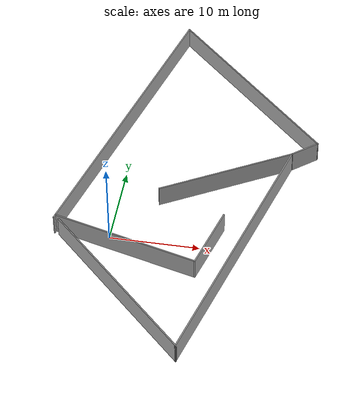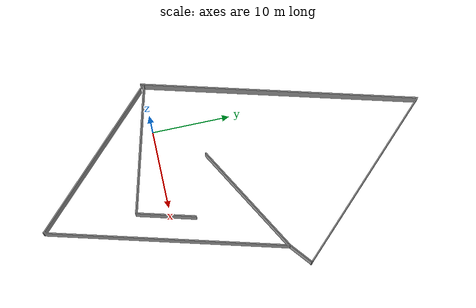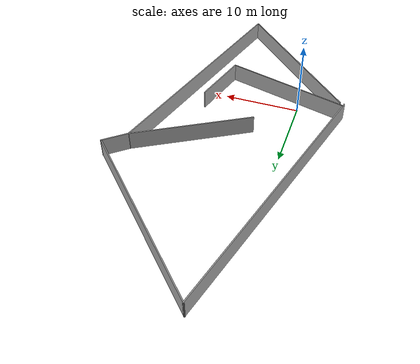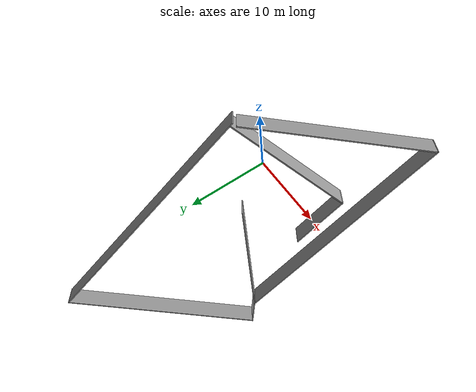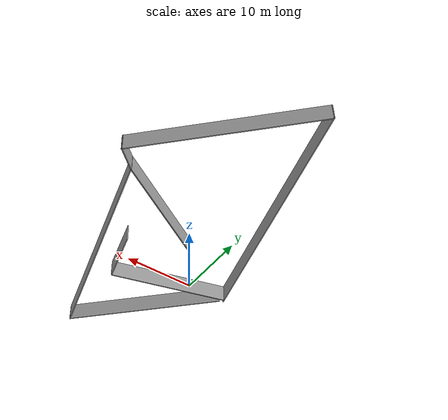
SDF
<?xml version='1.0'?>
<sdf version='1.7'>
  <model name='Untitled'>
    <pose>7.43541 8.92574 0 0 -0 0</pose>
    <link name='Wall_1'>
      <collision name='Wall_1_Collision'>
        <geometry>
          <box>
            <size>22.25 0.15 2.5</size>
          </box>
        </geometry>
        <pose>0 0 1.25 0 -0 0</pose>
      </collision>
      <visual name='Wall_1_Visual'>
        <pose>0 0 1.25 0 -0 0</pose>
        <geometry>
          <box>
            <size>22.25 0.15 2.5</size>
          </box>
        </geometry>
        <material>
          <script>
            <uri>file://media/materials/scripts/gazebo.material</uri>
            <name>Gazebo/Grey</name>
          </script>
          <ambient>1 1 1 1</ambient>
        </material>
        <meta>
          <layer>0</layer>
        </meta>
      </visual>
      <pose>-5.06188 -17.1793 0 0 -0 -0.785398</pose>
    </link>
    <link name='Wall_12'>
      <collision name='Wall_12_Collision'>
        <geometry>
          <box>
            <size>16.75 0.15 2.5</size>
          </box>
        </geometry>
        <pose>0 0 1.25 0 -0 0</pose>
      </collision>
      <visual name='Wall_12_Visual'>
        <pose>0 0 1.25 0 -0 0</pose>
        <geometry>
          <box>
            <size>16.75 0.15 2.5</size>
          </box>
        </geometry>
        <material>
          <script>
            <uri>file://media/materials/scripts/gazebo.material</uri>
            <name>Gazebo/Grey</name>
          </script>
          <ambient>1 1 1 1</ambient>
        </material>
        <meta>
          <layer>0</layer>
        </meta>
      </visual>
      <pose>-5.27985 -10.9735 0 0 -0 -0.261799</pose>
    </link>
    <link name='Wall_13'>
      <collision name='Wall_13_Collision'>
        <geometry>
          <box>
            <size>7.75 0.15 2.5</size>
          </box>
        </geometry>
        <pose>0 0 1.25 0 -0 0</pose>
      </collision>
      <visual name='Wall_13_Visual'>
        <pose>0 0 1.25 0 -0 0</pose>
        <geometry>
          <box>
            <size>7.75 0.15 2.5</size>
          </box>
        </geometry>
        <material>
          <script>
            <uri>file://media/materials/scripts/gazebo.material</uri>
            <name>Gazebo/Grey</name>
          </script>
          <ambient>1 1 1 1</ambient>
        </material>
        <meta>
          <layer>0</layer>
        </meta>
      </visual>
      <pose>3.72085 -9.45123 0 0 -0 1.309</pose>
    </link>
    <link name='Wall_2'>
      <collision name='Wall_2_Collision'>
        <geometry>
          <box>
            <size>31.25 0.15 2.5</size>
          </box>
        </geometry>
        <pose>0 0 1.25 0 -0 0</pose>
      </collision>
      <visual name='Wall_2_Visual'>
        <pose>0 0 1.25 0 -0 0</pose>
        <geometry>
          <box>
            <size>31.25 0.15 2.5</size>
          </box>
        </geometry>
        <material>
          <script>
            <uri>file://media/materials/scripts/gazebo.material</uri>
            <name>Gazebo/Grey</name>
          </script>
          <ambient>1 1 1 1</ambient>
        </material>
        <meta>
          <layer>0</layer>
        </meta>
      </visual>
      <pose>6.77628 -9.97265 0 0 -0 1.309</pose>
    </link>
    <link name='Wall_5'>
      <collision name='Wall_5_Collision'>
        <geometry>
          <box>
            <size>35.5 0.15 2.5</size>
          </box>
        </geometry>
        <pose>0 0 1.25 0 -0 0</pose>
      </collision>
      <visual name='Wall_5_Visual'>
        <pose>0 0 1.25 0 -0 0</pose>
        <geometry>
          <box>
            <size>35.5 0.15 2.5</size>
          </box>
        </geometry>
        <material>
          <script>
            <uri>file://media/materials/scripts/gazebo.material</uri>
            <name>Gazebo/Grey</name>
          </script>
          <ambient>1 1 1 1</ambient>
        </material>
        <meta>
          <layer>0</layer>
        </meta>
      </visual>
      <pose>-8.88607 7.92006 0 0 -0 1.309</pose>
    </link>
    <link name='Wall_6'>
      <collision name='Wall_6_Collision'>
        <geometry>
          <box>
            <size>25.25 0.15 2.5</size>
          </box>
        </geometry>
        <pose>0 0 1.25 0 -0 0</pose>
      </collision>
      <visual name='Wall_6_Visual'>
        <pose>0 0 1.25 0 -0 0</pose>
        <geometry>
          <box>
            <size>25.25 0.15 2.5</size>
          </box>
        </geometry>
        <material>
          <script>
            <uri>file://media/materials/scripts/gazebo.material</uri>
            <name>Gazebo/Grey</name>
          </script>
          <ambient>1 1 1 1</ambient>
        </material>
        <meta>
          <layer>0</layer>
        </meta>
      </visual>
      <pose>4.56275 16.1186 0 0 -0 -0.785398</pose>
    </link>
    <link name='Wall_7'>
      <collision name='Wall_7_Collision'>
        <geometry>
          <box>
            <size>0.16 0.15 2.5</size>
          </box>
        </geometry>
        <pose>0 0 1.25 0 -0 0</pose>
      </collision>
      <visual name='Wall_7_Visual'>
        <pose>0 0 1.25 0 -0 0</pose>
        <geometry>
          <box>
            <size>0.16 0.15 2.5</size>
          </box>
        </geometry>
        <material>
          <script>
            <uri>file://media/materials/scripts/gazebo.material</uri>
            <name>Gazebo/Grey</name>
          </script>
          <ambient>1 1 1 1</ambient>
        </material>
        <meta>
          <layer>0</layer>
        </meta>
      </visual>
      <pose>13.4419 7.24442 0 0 -0 0</pose>
    </link>
    <link name='Wall_8'>
      <collision name='Wall_8_Collision'>
        <geometry>
          <box>
            <size>3.58917 0.15 2.5</size>
          </box>
        </geometry>
        <pose>0 0 1.25 0 -0 0</pose>
      </collision>
      <visual name='Wall_8_Visual'>
        <pose>0 0 1.25 0 -0 0</pose>
        <geometry>
          <box>
            <size>3.58917 0.15 2.5</size>
          </box>
        </geometry>
        <material>
          <script>
            <uri>file://media/materials/scripts/gazebo.material</uri>
            <name>Gazebo/Grey</name>
          </script>
          <ambient>1 1 1 1</ambient>
        </material>
        <meta>
          <layer>0</layer>
        </meta>
      </visual>
      <pose>12.1239 6.14595 0 0 -0 -2.44866</pose>
    </link>
    <link name='Wall_9'>
      <collision name='Wall_9_Collision'>
        <geometry>
          <box>
            <size>16 0.15 2.5</size>
          </box>
        </geometry>
        <pose>0 0 1.25 0 -0 0</pose>
      </collision>
      <visual name='Wall_9_Visual'>
        <pose>0 0 1.25 0 -0 0</pose>
        <geometry>
          <box>
            <size>16 0.15 2.5</size>
          </box>
        </geometry>
        <material>
          <script>
            <uri>file://media/materials/scripts/gazebo.material</uri>
            <name>Gazebo/Grey</name>
          </script>
          <ambient>1 1 1 1</ambient>
        </material>
        <meta>
          <layer>0</layer>
        </meta>
      </visual>
      <pose>3.93767 1.08499 0 0 -0 -2.61799</pose>
    </link>
    <static>1</static>
  </model>
</sdf>
